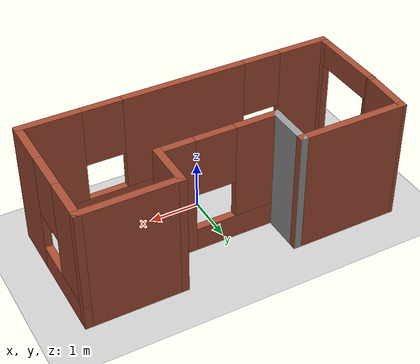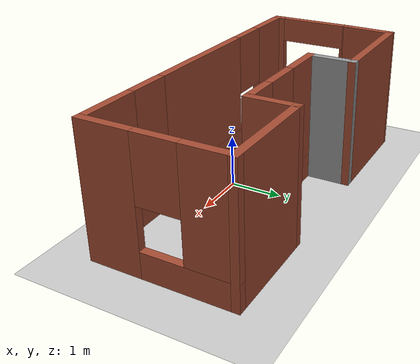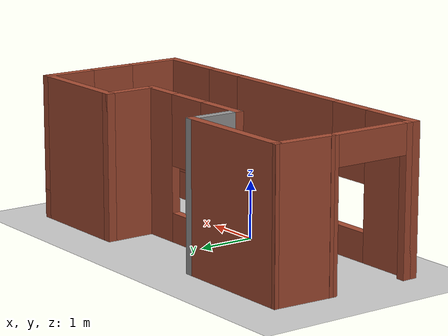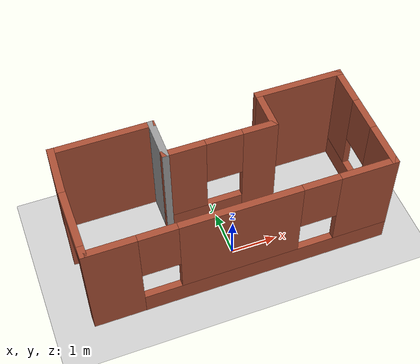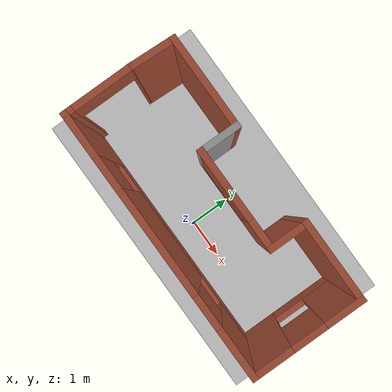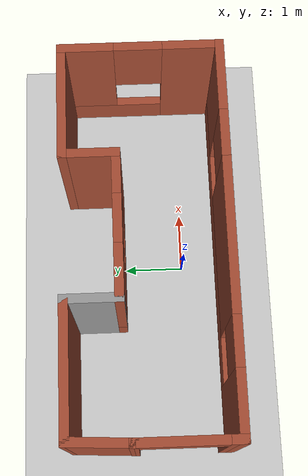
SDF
<sdf version="1.6">
 <world name="default">
  <light name="sun" type="directional">
   <pose>0 0 10 0 -0 0</pose>
   <diffuse>0.8 0.8 0.8 1</diffuse>
   <specular>0.2 0.2 0.2 1</specular>
   <attenuation>
    <range>1000</range>
    <constant>0.9</constant>
    <linear>0.01</linear>
    <quadratic>0.001</quadratic>
   </attenuation>
   <direction>-0.5 0.1 -0.9</direction>
  </light>
  <model name="ground_plane">
   <static>1</static>
   <link name="link">
    <collision name="collision">
     <geometry><plane><normal>0 0 1</normal><size>100 100</size></plane></geometry>
     <surface><friction><ode><mu>100</mu><mu2>50</mu2></ode></friction></surface>
    </collision>
    <visual name="visual">
     <cast_shadows>0</cast_shadows>
     <geometry><plane><normal>0 0 1</normal><size>100 100</size></plane></geometry>
     <material>
      <script><uri>file://media/materials/scripts/gazebo.material</uri><name>Gazebo/Grey</name></script>
     </material>
    </visual>
   </link>
  </model>
  <gravity>0 0 -9.8</gravity>
  <magnetic_field>6e-06 2.3e-05 -4.2e-05</magnetic_field>
  <atmosphere type="adiabatic"/>
  <physics name="default_physics" default="0" type="ode">
   <max_step_size>0.001</max_step_size>
   <real_time_factor>1</real_time_factor>
   <real_time_update_rate>1000</real_time_update_rate>
  </physics>
  <scene><ambient>0.4 0.4 0.4 1</ambient><background>0.7 0.7 0.7 1</background><shadows>1</shadows></scene>
  <spherical_coordinates>
   <surface_model>EARTH_WGS84</surface_model>
   <latitude_deg>0</latitude_deg>
   <longitude_deg>0</longitude_deg>
   <elevation>0</elevation>
   <heading_deg>0</heading_deg>
  </spherical_coordinates>
  <model name="HomeServiceRobot">
   <pose>-0.027739 0.631488 0 0 -0 0</pose>
   <link name="Wall_0">
    <pose>-3.17317 -0.501826 0 0 0 -1.5708</pose>
    <visual name="Wall_0_Visual_0">
     <pose>-0.825 0 1.25 0 -0 0</pose>
     <geometry><box><size>0.1 0.15 2.5</size></box></geometry>
     <material>
      <script><uri>file://media/materials/scripts/gazebo.material</uri><name>Gazebo/Bricks</name></script>
      <ambient>1 1 1 1</ambient>
     </material>
     <meta><layer>0</layer></meta>
    </visual>
    <collision name="Wall_0_Collision_0">
     <geometry><box><size>0.1 0.15 2.5</size></box></geometry>
     <pose>-0.825 0 1.25 0 -0 0</pose>
    </collision>
    <visual name="Wall_0_Visual_1">
     <pose>0.74 0 1.25 0 -0 0</pose>
     <geometry><box><size>0.27 0.15 2.5</size></box></geometry>
     <material>
      <script><uri>file://media/materials/scripts/gazebo.material</uri><name>Gazebo/Bricks</name></script>
      <ambient>1 1 1 1</ambient>
     </material>
     <meta><layer>0</layer></meta>
    </visual>
    <collision name="Wall_0_Collision_1">
     <geometry><box><size>0.27 0.15 2.5</size></box></geometry>
     <pose>0.74 0 1.25 0 -0 0</pose>
    </collision>
    <visual name="Wall_0_Visual_2">
     <pose>-0.085 0 2.25 0 -0 0</pose>
     <geometry><box><size>1.38 0.15 0.5</size></box></geometry>
     <material>
      <script><uri>file://media/materials/scripts/gazebo.material</uri><name>Gazebo/Bricks</name></script>
      <ambient>1 1 1 1</ambient>
     </material>
     <meta><layer>0</layer></meta>
    </visual>
    <collision name="Wall_0_Collision_2">
     <geometry><box><size>1.38 0.15 0.5</size></box></geometry>
     <pose>-0.085 0 2.25 0 -0 0</pose>
    </collision>
   </link>
   <link name="Wall_1">
    <pose>0.001826 -1.30183 0 0 -0 0</pose>
    <visual name="Wall_1_Visual_0">
     <pose>-2.6975 0 1.25 0 -0 0</pose>
     <geometry><box><size>1.105 0.15 2.5</size></box></geometry>
     <material>
      <script><uri>file://media/materials/scripts/gazebo.material</uri><name>Gazebo/Bricks</name></script>
      <ambient>1 1 1 1</ambient>
     </material>
     <meta><layer>0</layer></meta>
    </visual>
    <collision name="Wall_1_Collision_0">
     <geometry><box><size>1.105 0.15 2.5</size></box></geometry>
     <pose>-2.6975 0 1.25 0 -0 0</pose>
    </collision>
    <visual name="Wall_1_Visual_1">
     <pose>0.5525 0 0.25 0 -0 0</pose>
     <geometry><box><size>5.395 0.15 0.5</size></box></geometry>
     <material>
      <script><uri>file://media/materials/scripts/gazebo.material</uri><name>Gazebo/Bricks</name></script>
      <ambient>1 1 1 1</ambient>
     </material>
     <meta><layer>0</layer></meta>
    </visual>
    <collision name="Wall_1_Collision_1">
     <geometry><box><size>5.395 0.15 0.5</size></box></geometry>
     <pose>0.5525 0 0.25 0 -0 0</pose>
    </collision>
    <visual name="Wall_1_Visual_2">
     <pose>-0.07 0 1.5 0 -0 0</pose>
     <geometry><box><size>2.55 0.15 2</size></box></geometry>
     <material>
      <script><uri>file://media/materials/scripts/gazebo.material</uri><name>Gazebo/Bricks</name></script>
      <ambient>1 1 1 1</ambient>
     </material>
     <meta><layer>0</layer></meta>
    </visual>
    <collision name="Wall_1_Collision_2">
     <geometry><box><size>2.55 0.15 2</size></box></geometry>
     <pose>-0.07 0 1.5 0 -0 0</pose>
    </collision>
    <visual name="Wall_1_Visual_3">
     <pose>2.6275 0 1.5 0 -0 0</pose>
     <geometry><box><size>1.245 0.15 2</size></box></geometry>
     <material>
      <script><uri>file://media/materials/scripts/gazebo.material</uri><name>Gazebo/Bricks</name></script>
      <ambient>1 1 1 1</ambient>
     </material>
     <meta><layer>0</layer></meta>
    </visual>
    <collision name="Wall_1_Collision_3">
     <geometry><box><size>1.245 0.15 2</size></box></geometry>
     <pose>2.6275 0 1.5 0 -0 0</pose>
    </collision>
    <visual name="Wall_1_Visual_4">
     <pose>-1.745 0 1.9 0 -0 0</pose>
     <geometry><box><size>0.8 0.15 1.2</size></box></geometry>
     <material>
      <script><uri>file://media/materials/scripts/gazebo.material</uri><name>Gazebo/Bricks</name></script>
      <ambient>1 1 1 1</ambient>
     </material>
     <meta><layer>0</layer></meta>
    </visual>
    <collision name="Wall_1_Collision_4">
     <geometry><box><size>0.8 0.15 1.2</size></box></geometry>
     <pose>-1.745 0 1.9 0 -0 0</pose>
    </collision>
    <visual name="Wall_1_Visual_5">
     <pose>1.605 0 1.9 0 -0 0</pose>
     <geometry><box><size>0.8 0.15 1.2</size></box></geometry>
     <material>
      <script><uri>file://media/materials/scripts/gazebo.material</uri><name>Gazebo/Bricks</name></script>
      <ambient>1 1 1 1</ambient>
     </material>
     <meta><layer>0</layer></meta>
    </visual>
    <collision name="Wall_1_Collision_5">
     <geometry><box><size>0.8 0.15 1.2</size></box></geometry>
     <pose>1.605 0 1.9 0 -0 0</pose>
    </collision>
   </link>
   <link name="Wall_2">
    <pose>3.17683 -0.001826 0 0 -0 1.5708</pose>
    <visual name="Wall_2_Visual_0">
     <pose>-0.8675 0 1.25 0 -0 0</pose>
     <geometry><box><size>1.015 0.15 2.5</size></box></geometry>
     <material>
      <script><uri>file://media/materials/scripts/gazebo.material</uri><name>Gazebo/Bricks</name></script>
      <ambient>1 1 1 1</ambient>
     </material>
     <meta><layer>0</layer></meta>
    </visual>
    <collision name="Wall_2_Collision_0">
     <geometry><box><size>1.015 0.15 2.5</size></box></geometry>
     <pose>-0.8675 0 1.25 0 -0 0</pose>
    </collision>
    <visual name="Wall_2_Visual_1">
     <pose>0.5075 0 0.25 0 -0 0</pose>
     <geometry><box><size>1.735 0.15 0.5</size></box></geometry>
     <material>
      <script><uri>file://media/materials/scripts/gazebo.material</uri><name>Gazebo/Bricks</name></script>
      <ambient>1 1 1 1</ambient>
     </material>
     <meta><layer>0</layer></meta>
    </visual>
    <collision name="Wall_2_Collision_1">
     <geometry><box><size>1.735 0.15 0.5</size></box></geometry>
     <pose>0.5075 0 0.25 0 -0 0</pose>
    </collision>
    <visual name="Wall_2_Visual_2">
     <pose>0.9075 0 1.5 0 -0 0</pose>
     <geometry><box><size>0.935 0.15 2</size></box></geometry>
     <material>
      <script><uri>file://media/materials/scripts/gazebo.material</uri><name>Gazebo/Bricks</name></script>
      <ambient>1 1 1 1</ambient>
     </material>
     <meta><layer>0</layer></meta>
    </visual>
    <collision name="Wall_2_Collision_2">
     <geometry><box><size>0.935 0.15 2</size></box></geometry>
     <pose>0.9075 0 1.5 0 -0 0</pose>
    </collision>
    <visual name="Wall_2_Visual_3">
     <pose>0.04 0 1.9 0 -0 0</pose>
     <geometry><box><size>0.8 0.15 1.2</size></box></geometry>
     <material>
      <script><uri>file://media/materials/scripts/gazebo.material</uri><name>Gazebo/Bricks</name></script>
      <ambient>1 1 1 1</ambient>
     </material>
     <meta><layer>0</layer></meta>
    </visual>
    <collision name="Wall_2_Collision_3">
     <geometry><box><size>0.8 0.15 1.2</size></box></geometry>
     <pose>0.04 0 1.9 0 -0 0</pose>
    </collision>
   </link>
   <link name="Wall_3">
    <collision name="Wall_3_Collision">
     <geometry><box><size>2 0.15 2.5</size></box></geometry>
     <pose>0 0 1.25 0 -0 0</pose>
    </collision>
    <visual name="Wall_3_Visual">
     <pose>0 0 1.25 0 -0 0</pose>
     <geometry><box><size>2 0.15 2.5</size></box></geometry>
     <material>
      <script><uri>file://media/materials/scripts/gazebo.material</uri><name>Gazebo/Bricks</name></script>
      <ambient>1 1 1 1</ambient>
     </material>
     <meta><layer>0</layer></meta>
    </visual>
    <pose>2.25183 1.29817 0 0 -0 3.14159</pose>
   </link>
   <link name="Wall_4">
    <collision name="Wall_4_Collision">
     <geometry><box><size>1 0.15 2.5</size></box></geometry>
     <pose>0 0 1.25 0 -0 0</pose>
    </collision>
    <visual name="Wall_4_Visual">
     <pose>0 0 1.25 0 -0 0</pose>
     <geometry><box><size>1 0.15 2.5</size></box></geometry>
     <material>
      <script><uri>file://media/materials/scripts/gazebo.material</uri><name>Gazebo/Bricks</name></script>
      <ambient>1 1 1 1</ambient>
     </material>
     <meta><layer>0</layer></meta>
    </visual>
    <pose>1.32683 0.873174 0 0 0 -1.5708</pose>
   </link>
   <link name="Wall_5">
    <pose>0.151826 0.448174 0 0 -0 3.14159</pose>
    <visual name="Wall_5_Visual_0">
     <pose>-0.8675 0 1.25 0 -0 0</pose>
     <geometry><box><size>0.765 0.15 2.5</size></box></geometry>
     <material>
      <script><uri>file://media/materials/scripts/gazebo.material</uri><name>Gazebo/Bricks</name></script>
      <ambient>1 1 1 1</ambient>
     </material>
     <meta><layer>0</layer></meta>
    </visual>
    <collision name="Wall_5_Collision_0">
     <geometry><box><size>0.765 0.15 2.5</size></box></geometry>
     <pose>-0.8675 0 1.25 0 -0 0</pose>
    </collision>
    <visual name="Wall_5_Visual_1">
     <pose>0.3825 0 0.25 0 -0 0</pose>
     <geometry><box><size>1.735 0.15 0.5</size></box></geometry>
     <material>
      <script><uri>file://media/materials/scripts/gazebo.material</uri><name>Gazebo/Bricks</name></script>
      <ambient>1 1 1 1</ambient>
     </material>
     <meta><layer>0</layer></meta>
    </visual>
    <collision name="Wall_5_Collision_1">
     <geometry><box><size>1.735 0.15 0.5</size></box></geometry>
     <pose>0.3825 0 0.25 0 -0 0</pose>
    </collision>
    <visual name="Wall_5_Visual_2">
     <pose>0.7825 0 1.5 0 -0 0</pose>
     <geometry><box><size>0.935 0.15 2</size></box></geometry>
     <material>
      <script><uri>file://media/materials/scripts/gazebo.material</uri><name>Gazebo/Bricks</name></script>
      <ambient>1 1 1 1</ambient>
     </material>
     <meta><layer>0</layer></meta>
    </visual>
    <collision name="Wall_5_Collision_2">
     <geometry><box><size>0.935 0.15 2</size></box></geometry>
     <pose>0.7825 0 1.5 0 -0 0</pose>
    </collision>
    <visual name="Wall_5_Visual_3">
     <pose>-0.085 0 1.9 0 -0 0</pose>
     <geometry><box><size>0.8 0.15 1.2</size></box></geometry>
     <material>
      <script><uri>file://media/materials/scripts/gazebo.material</uri><name>Gazebo/Bricks</name></script>
      <ambient>1 1 1 1</ambient>
     </material>
     <meta><layer>0</layer></meta>
    </visual>
    <collision name="Wall_5_Collision_3">
     <geometry><box><size>0.8 0.15 1.2</size></box></geometry>
     <pose>-0.085 0 1.9 0 -0 0</pose>
    </collision>
   </link>
   <link name="Wall_6">
    <collision name="Wall_6_Collision">
     <geometry><box><size>1 0.15 2.5</size></box></geometry>
     <pose>0 0 1.25 0 -0 0</pose>
    </collision>
    <visual name="Wall_6_Visual">
     <pose>0 0 1.25 0 -0 0</pose>
     <geometry><box><size>1 0.15 2.5</size></box></geometry>
     <material>
      <script><uri>file://media/materials/scripts/gazebo.material</uri><name>Gazebo/Grey</name></script>
      <ambient>1 1 1 1</ambient>
     </material>
     <meta><layer>0</layer></meta>
    </visual>
    <pose>-1.02317 0.873174 0 0 -0 1.5708</pose>
   </link>
   <link name="Wall_7">
    <collision name="Wall_7_Collision">
     <geometry><box><size>2.25 0.15 2.5</size></box></geometry>
     <pose>0 0 1.25 0 -0 0</pose>
    </collision>
    <visual name="Wall_7_Visual">
     <pose>0 0 1.25 0 -0 0</pose>
     <geometry><box><size>2.25 0.15 2.5</size></box></geometry>
     <material>
      <script><uri>file://media/materials/scripts/gazebo.material</uri><name>Gazebo/Bricks</name></script>
      <ambient>1 1 1 1</ambient>
     </material>
     <meta><layer>0</layer></meta>
    </visual>
    <pose>-2.07317 1.29817 0 0 -0 3.14159</pose>
   </link>
   <link name="Wall_8">
    <collision name="Wall_8_Collision">
     <geometry><box><size>1.15125 0.15 2.5</size></box></geometry>
     <pose>0 0 1.25 0 -0 0</pose>
    </collision>
    <visual name="Wall_8_Visual">
     <pose>0 0 1.25 0 -0 0</pose>
     <geometry><box><size>1.15125 0.15 2.5</size></box></geometry>
     <material>
      <script><uri>file://media/materials/scripts/gazebo.material</uri><name>Gazebo/Bricks</name></script>
      <ambient>1 1 1 1</ambient>
     </material>
     <meta><layer>0</layer></meta>
    </visual>
    <pose>-3.14817 0.798174 0 0 0 -1.62075</pose>
   </link>
   <static>1</static>
  </model>
 </world>
</sdf>
